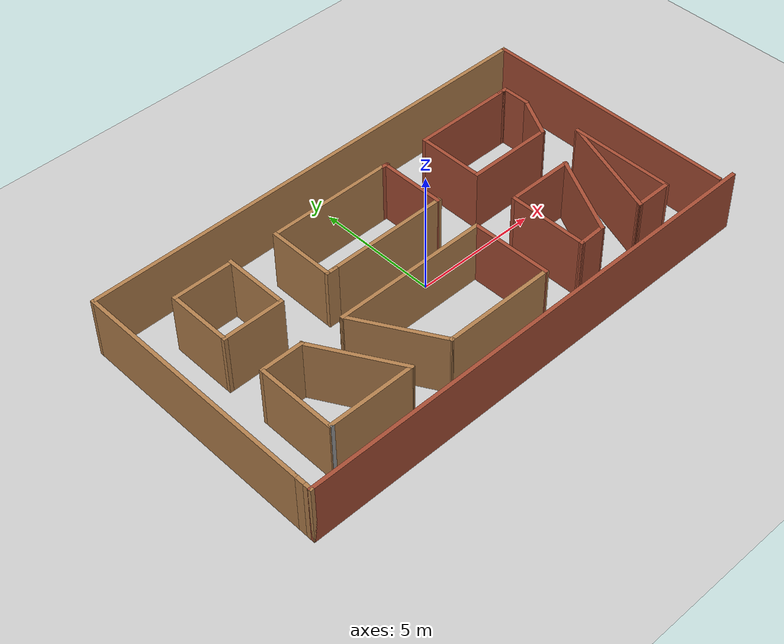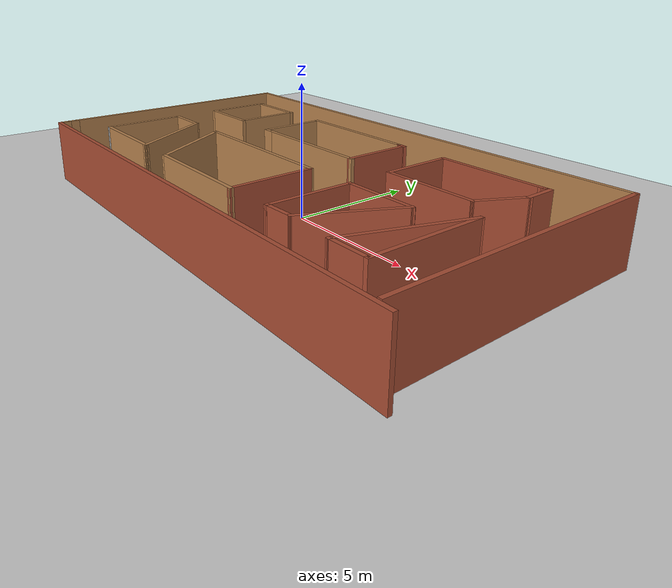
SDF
<sdf version="1.4">
  <world name="default">

    <scene>
      <ambient>0.4 0.4 0.4 1</ambient>
      <background>0.7 0.7 0.7 1</background>
      <shadows>false</shadows>
    </scene>

    <!-- A global light source -->
    <include>
      <uri>model://sun</uri>
    </include>

    <!-- A ground plane -->
    <include>
      <uri>model://ground_plane</uri>
    </include>

    <!--my own map-->
    <include>
      <uri>model://newcorridor</uri>
	<pose> 0 0 0 0 0 0</pose>
    </include>

    <physics type="ode">
      <real_time_update_rate>1000.0</real_time_update_rate>
      <max_step_size>0.001</max_step_size>
      <real_time_factor>1</real_time_factor>
      <ode>
        <solver>
          <type>quick</type>
          <iters>150</iters>
          <precon_iters>0</precon_iters>
          <sor>1.400000</sor>
          <use_dynamic_moi_rescaling>1</use_dynamic_moi_rescaling>
        </solver>
        <constraints>
          <cfm>0.00001</cfm>
          <erp>0.2</erp>
          <contact_max_correcting_vel>2000.000000</contact_max_correcting_vel>
          <contact_surface_layer>0.01000</contact_surface_layer>
        </constraints>
      </ode>
    </physics>
  </world>

</sdf>

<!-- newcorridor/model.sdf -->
<sdf version='1.6'>
  <model name='newcorridor'>
    <pose frame=''>-0.228006 0.421982 0 0 -0 0</pose>
    <link name='Wall_10'>
      <collision name='Wall_10_Collision'>
        <geometry>
          <box>
            <size>4.911 0.15 2.5</size>
          </box>
        </geometry>
        <pose frame=''>0 0 1.25 0 -0 0</pose>
      </collision>
      <visual name='Wall_10_Visual'>
        <pose frame=''>0 0 1.25 0 -0 0</pose>
        <geometry>
          <box>
            <size>4.911 0.15 2.5</size>
          </box>
        </geometry>
        <material>
          <script>
            <uri>file://media/materials/scripts/gazebo.material</uri>
            <name>Gazebo/Wood</name>
          </script>
          <ambient>1 1 1 1</ambient>
        </material>
      </visual>
      <pose frame=''>-0.828091 0.964898 0 0 -0 3.14159</pose>
    </link>
    <link name='Wall_12'>
      <collision name='Wall_12_Collision'>
        <geometry>
          <box>
            <size>0.5 0.15 2.5</size>
          </box>
        </geometry>
        <pose frame=''>0 0 1.25 0 -0 0</pose>
      </collision>
      <visual name='Wall_12_Visual'>
        <pose frame=''>0 0 1.25 0 -0 0</pose>
        <geometry>
          <box>
            <size>0.5 0.15 2.5</size>
          </box>
        </geometry>
        <material>
          <script>
            <uri>file://media/materials/scripts/gazebo.material</uri>
            <name>Gazebo/Wood</name>
          </script>
          <ambient>1 1 1 1</ambient>
        </material>
      </visual>
      <pose frame=''>-3.38359 0.964898 0 0 -0 3.14159</pose>
    </link>
    <link name='Wall_14'>
      <collision name='Wall_14_Collision'>
        <geometry>
          <box>
            <size>2.75 0.15 2.5</size>
          </box>
        </geometry>
        <pose frame=''>0 0 1.25 0 -0 0</pose>
      </collision>
      <visual name='Wall_14_Visual'>
        <pose frame=''>0 0 1.25 0 -0 0</pose>
        <geometry>
          <box>
            <size>2.75 0.15 2.5</size>
          </box>
        </geometry>
        <material>
          <script>
            <uri>file://media/materials/scripts/gazebo.material</uri>
            <name>Gazebo/Wood</name>
          </script>
          <ambient>1 1 1 1</ambient>
        </material>
      </visual>
      <pose frame=''>-3.55859 2.2649 0 0 -0 1.5708</pose>
    </link>
    <link name='Wall_15'>
      <collision name='Wall_15_Collision'>
        <geometry>
          <box>
            <size>5 0.15 2.5</size>
          </box>
        </geometry>
        <pose frame=''>0 0 1.25 0 -0 0</pose>
      </collision>
      <visual name='Wall_15_Visual'>
        <pose frame=''>0 0 1.25 0 -0 0</pose>
        <geometry>
          <box>
            <size>5 0.15 2.5</size>
          </box>
        </geometry>
        <material>
          <script>
            <uri>file://media/materials/scripts/gazebo.material</uri>
            <name>Gazebo/Wood</name>
          </script>
          <ambient>1 1 1 1</ambient>
        </material>
      </visual>
      <pose frame=''>-1.13359 3.5649 0 0 -0 0</pose>
    </link>
    <link name='Wall_16'>
      <collision name='Wall_16_Collision'>
        <geometry>
          <box>
            <size>0.40889 0.15 2.5</size>
          </box>
        </geometry>
        <pose frame=''>0 0 1.25 0 -0 0</pose>
      </collision>
      <visual name='Wall_16_Visual'>
        <pose frame=''>0 0 1.25 0 -0 0</pose>
        <geometry>
          <box>
            <size>0.40889 0.15 2.5</size>
          </box>
        </geometry>
        <material>
          <script>
            <uri>file://media/materials/scripts/gazebo.material</uri>
            <name>Gazebo/Bricks</name>
          </script>
          <ambient>1 1 1 1</ambient>
        </material>
      </visual>
      <pose frame=''>1.42021 3.55196 0 0 0 -0.10014</pose>
    </link>
    <link name='Wall_17'>
      <collision name='Wall_17_Collision'>
        <geometry>
          <box>
            <size>2.72412 0.15 2.5</size>
          </box>
        </geometry>
        <pose frame=''>0 0 1.25 0 -0 0</pose>
      </collision>
      <visual name='Wall_17_Visual'>
        <pose frame=''>0 0 1.25 0 -0 0</pose>
        <geometry>
          <box>
            <size>2.72412 0.15 2.5</size>
          </box>
        </geometry>
        <material>
          <script>
            <uri>file://media/materials/scripts/gazebo.material</uri>
            <name>Gazebo/Bricks</name>
          </script>
          <ambient>1 1 1 1</ambient>
        </material>
      </visual>
      <pose frame=''>1.50471 2.25196 0 0 0 -1.56947</pose>
    </link>
    <link name='Wall_20'>
      <collision name='Wall_20_Collision'>
        <geometry>
          <box>
            <size>2.6825 0.15 2.5</size>
          </box>
        </geometry>
        <pose frame=''>0 0 1.25 0 -0 0</pose>
      </collision>
      <visual name='Wall_20_Visual'>
        <pose frame=''>0 0 1.25 0 -0 0</pose>
        <geometry>
          <box>
            <size>2.6825 0.15 2.5</size>
          </box>
        </geometry>
        <material>
          <script>
            <uri>file://media/materials/scripts/gazebo.material</uri>
            <name>Gazebo/Wood</name>
          </script>
          <ambient>1 1 1 1</ambient>
        </material>
      </visual>
      <pose frame=''>-5.48072 2.32624 0 0 0 -1.5708</pose>
    </link>
    <link name='Wall_21'>
      <collision name='Wall_21_Collision'>
        <geometry>
          <box>
            <size>2.5 0.15 2.5</size>
          </box>
        </geometry>
        <pose frame=''>0 0 1.25 0 -0 0</pose>
      </collision>
      <visual name='Wall_21_Visual'>
        <pose frame=''>0 0 1.25 0 -0 0</pose>
        <geometry>
          <box>
            <size>2.5 0.15 2.5</size>
          </box>
        </geometry>
        <material>
          <script>
            <uri>file://media/materials/scripts/gazebo.material</uri>
            <name>Gazebo/Wood</name>
          </script>
          <ambient>1 1 1 1</ambient>
        </material>
      </visual>
      <pose frame=''>-6.65571 1.05999 0 0 -0 3.14159</pose>
    </link>
    <link name='Wall_22'>
      <collision name='Wall_22_Collision'>
        <geometry>
          <box>
            <size>2.6825 0.15 2.5</size>
          </box>
        </geometry>
        <pose frame=''>0 0 1.25 0 -0 0</pose>
      </collision>
      <visual name='Wall_22_Visual'>
        <pose frame=''>0 0 1.25 0 -0 0</pose>
        <geometry>
          <box>
            <size>2.6825 0.15 2.5</size>
          </box>
        </geometry>
        <material>
          <script>
            <uri>file://media/materials/scripts/gazebo.material</uri>
            <name>Gazebo/Wood</name>
          </script>
          <ambient>1 1 1 1</ambient>
        </material>
      </visual>
      <pose frame=''>-7.83071 2.32624 0 0 -0 1.5708</pose>
    </link>
    <link name='Wall_23'>
      <collision name='Wall_23_Collision'>
        <geometry>
          <box>
            <size>2.5 0.15 2.5</size>
          </box>
        </geometry>
        <pose frame=''>0 0 1.25 0 -0 0</pose>
      </collision>
      <visual name='Wall_23_Visual'>
        <pose frame=''>0 0 1.25 0 -0 0</pose>
        <geometry>
          <box>
            <size>2.5 0.15 2.5</size>
          </box>
        </geometry>
        <material>
          <script>
            <uri>file://media/materials/scripts/gazebo.material</uri>
            <name>Gazebo/Wood</name>
          </script>
          <ambient>1 1 1 1</ambient>
        </material>
      </visual>
      <pose frame=''>-6.65571 3.56208 0 0 -0 0</pose>
    </link>
    <link name='Wall_25'>
      <collision name='Wall_25_Collision'>
        <geometry>
          <box>
            <size>10 0.15 2.5</size>
          </box>
        </geometry>
        <pose frame=''>0 0 1.25 0 -0 0</pose>
      </collision>
      <visual name='Wall_25_Visual'>
        <pose frame=''>0 0 1.25 0 -0 0</pose>
        <geometry>
          <box>
            <size>10 0.15 2.5</size>
          </box>
        </geometry>
        <material>
          <script>
            <uri>file://media/materials/scripts/gazebo.material</uri>
            <name>Gazebo/Wood</name>
          </script>
          <ambient>1 1 1 1</ambient>
        </material>
      </visual>
      <pose frame=''>-9.8 0.35 0 0 0 -1.5708</pose>
    </link>
    <link name='Wall_27'>
      <collision name='Wall_27_Collision'>
        <geometry>
          <box>
            <size>19.25 0.15 2.5</size>
          </box>
        </geometry>
        <pose frame=''>0 0 1.25 0 -0 0</pose>
      </collision>
      <visual name='Wall_27_Visual'>
        <pose frame=''>0 0 1.25 0 -0 0</pose>
        <geometry>
          <box>
            <size>19.25 0.15 2.5</size>
          </box>
        </geometry>
        <material>
          <script>
            <uri>file://media/materials/scripts/gazebo.material</uri>
            <name>Gazebo/Wood</name>
          </script>
          <ambient>1 1 1 1</ambient>
        </material>
      </visual>
      <pose frame=''>-0.25 5.275 0 0 -0 0</pose>
    </link>
    <link name='Wall_30'>
      <collision name='Wall_30_Collision'>
        <geometry>
          <box>
            <size>1.75 0.15 2.5</size>
          </box>
        </geometry>
        <pose frame=''>0 0 1.25 0 -0 0</pose>
      </collision>
      <visual name='Wall_30_Visual'>
        <pose frame=''>0 0 1.25 0 -0 0</pose>
        <geometry>
          <box>
            <size>1.75 0.15 2.5</size>
          </box>
        </geometry>
        <material>
          <script>
            <uri>file://media/materials/scripts/gazebo.material</uri>
            <name>Gazebo/Wood</name>
          </script>
          <ambient>1 1 1 1</ambient>
        </material>
      </visual>
      <pose frame=''>-7.03071 -0.79001 0 0 -0 0</pose>
    </link>
    <link name='Wall_31'>
      <collision name='Wall_31_Collision'>
        <geometry>
          <box>
            <size>3.75 0.15 2.5</size>
          </box>
        </geometry>
        <pose frame=''>0 0 1.25 0 -0 0</pose>
      </collision>
      <visual name='Wall_31_Visual'>
        <pose frame=''>0 0 1.25 0 -0 0</pose>
        <geometry>
          <box>
            <size>3.75 0.15 2.5</size>
          </box>
        </geometry>
        <material>
          <script>
            <uri>file://media/materials/scripts/gazebo.material</uri>
            <name>Gazebo/Wood</name>
          </script>
          <ambient>1 1 1 1</ambient>
        </material>
      </visual>
      <pose frame=''>-5.33071 -2.34886 0 0 0 -1.0472</pose>
    </link>
    <link name='Wall_32'>
      <collision name='Wall_32_Collision'>
        <geometry>
          <box>
            <size>3.5 0.15 2.5</size>
          </box>
        </geometry>
        <pose frame=''>0 0 1.25 0 -0 0</pose>
      </collision>
      <visual name='Wall_32_Visual'>
        <pose frame=''>0 0 1.25 0 -0 0</pose>
        <geometry>
          <box>
            <size>3.5 0.15 2.5</size>
          </box>
        </geometry>
        <material>
          <script>
            <uri>file://media/materials/scripts/gazebo.material</uri>
            <name>Gazebo/Wood</name>
          </script>
          <ambient>1 1 1 1</ambient>
        </material>
      </visual>
      <pose frame=''>-6.10572 -3.9077 0 0 -0 3.14159</pose>
    </link>
    <link name='Wall_33'>
      <collision name='Wall_33_Collision'>
        <geometry>
          <box>
            <size>0.15 0.15 2.5</size>
          </box>
        </geometry>
        <pose frame=''>0 0 1.25 0 -0 0</pose>
      </collision>
      <visual name='Wall_33_Visual'>
        <pose frame=''>0 0 1.25 0 -0 0</pose>
        <geometry>
          <box>
            <size>0.15 0.15 2.5</size>
          </box>
        </geometry>
        <material>
          <script>
            <uri>file://media/materials/scripts/gazebo.material</uri>
            <name>Gazebo/Grey</name>
          </script>
          <ambient>1 1 1 1</ambient>
        </material>
      </visual>
      <pose frame=''>-7.78071 -3.9077 0 0 -0 0</pose>
    </link>
    <link name='Wall_34'>
      <collision name='Wall_34_Collision'>
        <geometry>
          <box>
            <size>0.15 0.15 2.5</size>
          </box>
        </geometry>
        <pose frame=''>0 0 1.25 0 -0 0</pose>
      </collision>
      <visual name='Wall_34_Visual'>
        <pose frame=''>0 0 1.25 0 -0 0</pose>
        <geometry>
          <box>
            <size>0.15 0.15 2.5</size>
          </box>
        </geometry>
        <material>
          <script>
            <uri>file://media/materials/scripts/gazebo.material</uri>
            <name>Gazebo/Grey</name>
          </script>
          <ambient>1 1 1 1</ambient>
        </material>
      </visual>
      <pose frame=''>-7.78071 -3.9077 0 0 -0 0</pose>
    </link>
    <link name='Wall_38'>
      <collision name='Wall_38_Collision'>
        <geometry>
          <box>
            <size>3.25 0.15 2.5</size>
          </box>
        </geometry>
        <pose frame=''>0 0 1.25 0 -0 0</pose>
      </collision>
      <visual name='Wall_38_Visual'>
        <pose frame=''>0 0 1.25 0 -0 0</pose>
        <geometry>
          <box>
            <size>3.25 0.15 2.5</size>
          </box>
        </geometry>
        <material>
          <script>
            <uri>file://media/materials/scripts/gazebo.material</uri>
            <name>Gazebo/Wood</name>
          </script>
          <ambient>1 1 1 1</ambient>
        </material>
      </visual>
      <pose frame=''>-7.83071 -2.34001 0 0 0 -1.5708</pose>
    </link>
    <link name='Wall_40'>
      <collision name='Wall_40_Collision'>
        <geometry>
          <box>
            <size>3.75 0.15 2.5</size>
          </box>
        </geometry>
        <pose frame=''>0 0 1.25 0 -0 0</pose>
      </collision>
      <visual name='Wall_40_Visual'>
        <pose frame=''>0 0 1.25 0 -0 0</pose>
        <geometry>
          <box>
            <size>3.75 0.15 2.5</size>
          </box>
        </geometry>
        <material>
          <script>
            <uri>file://media/materials/scripts/gazebo.material</uri>
            <name>Gazebo/Wood</name>
          </script>
          <ambient>1 1 1 1</ambient>
        </material>
      </visual>
      <pose frame=''>-3.63176 -2.40626 0 0 0 -1.0472</pose>
    </link>
    <link name='Wall_42'>
      <collision name='Wall_42_Collision'>
        <geometry>
          <box>
            <size>6.25 0.15 2.5</size>
          </box>
        </geometry>
        <pose frame=''>0 0 1.25 0 -0 0</pose>
      </collision>
      <visual name='Wall_42_Visual'>
        <pose frame=''>0 0 1.25 0 -0 0</pose>
        <geometry>
          <box>
            <size>6.25 0.15 2.5</size>
          </box>
        </geometry>
        <material>
          <script>
            <uri>file://media/materials/scripts/gazebo.material</uri>
            <name>Gazebo/Wood</name>
          </script>
          <ambient>1 1 1 1</ambient>
        </material>
      </visual>
      <pose frame=''>-1.48176 -0.847414 0 0 -0 0</pose>
    </link>
    <link name='Wall_44'>
      <collision name='Wall_44_Collision'>
        <geometry>
          <box>
            <size>0.5 0.15 2.5</size>
          </box>
        </geometry>
        <pose frame=''>0 0 1.25 0 -0 0</pose>
      </collision>
      <visual name='Wall_44_Visual'>
        <pose frame=''>0 0 1.25 0 -0 0</pose>
        <geometry>
          <box>
            <size>0.5 0.15 2.5</size>
          </box>
        </geometry>
        <material>
          <script>
            <uri>file://media/materials/scripts/gazebo.material</uri>
            <name>Gazebo/Wood</name>
          </script>
          <ambient>1 1 1 1</ambient>
        </material>
      </visual>
      <pose frame=''>-9.8 -4.75 0 0 0 -1.5708</pose>
    </link>
    <link name='Wall_45'>
      <collision name='Wall_45_Collision'>
        <geometry>
          <box>
            <size>0.5 0.15 2.5</size>
          </box>
        </geometry>
        <pose frame=''>0 0 1.25 0 -0 0</pose>
      </collision>
      <visual name='Wall_45_Visual'>
        <pose frame=''>0 0 1.25 0 -0 0</pose>
        <geometry>
          <box>
            <size>0.5 0.15 2.5</size>
          </box>
        </geometry>
        <material>
          <script>
            <uri>file://media/materials/scripts/gazebo.material</uri>
            <name>Gazebo/Wood</name>
          </script>
          <ambient>1 1 1 1</ambient>
        </material>
      </visual>
      <pose frame=''>-9.8 -5.1 0 0 0 -1.5708</pose>
    </link>
    <link name='Wall_46'>
      <collision name='Wall_46_Collision'>
        <geometry>
          <box>
            <size>19.75 0.15 2.5</size>
          </box>
        </geometry>
        <pose frame=''>0 0 1.25 0 -0 0</pose>
      </collision>
      <visual name='Wall_46_Visual'>
        <pose frame=''>0 0 1.25 0 -0 0</pose>
        <geometry>
          <box>
            <size>19.75 0.15 2.5</size>
          </box>
        </geometry>
        <material>
          <script>
            <uri>file://media/materials/scripts/gazebo.material</uri>
            <name>Gazebo/Bricks</name>
          </script>
          <ambient>1 1 1 1</ambient>
        </material>
      </visual>
      <pose frame=''>0 -5.275 0 0 -0 0</pose>
    </link>
    <link name='Wall_48'>
      <collision name='Wall_48_Collision'>
        <geometry>
          <box>
            <size>4.5 0.15 2.5</size>
          </box>
        </geometry>
        <pose frame=''>0 0 1.25 0 -0 0</pose>
      </collision>
      <visual name='Wall_48_Visual'>
        <pose frame=''>0 0 1.25 0 -0 0</pose>
        <geometry>
          <box>
            <size>4.5 0.15 2.5</size>
          </box>
        </geometry>
        <material>
          <script>
            <uri>file://media/materials/scripts/gazebo.material</uri>
            <name>Gazebo/Wood</name>
          </script>
          <ambient>1 1 1 1</ambient>
        </material>
      </visual>
      <pose frame=''>-0.55676 -3.9651 0 0 -0 0</pose>
    </link>
    <link name='Wall_49'>
      <collision name='Wall_49_Collision'>
        <geometry>
          <box>
            <size>3.26809 0.15 2.5</size>
          </box>
        </geometry>
        <pose frame=''>0 0 1.25 0 -0 0</pose>
      </collision>
      <visual name='Wall_49_Visual'>
        <pose frame=''>0 0 1.25 0 -0 0</pose>
        <geometry>
          <box>
            <size>3.26809 0.15 2.5</size>
          </box>
        </geometry>
        <material>
          <script>
            <uri>file://media/materials/scripts/gazebo.material</uri>
            <name>Gazebo/Bricks</name>
          </script>
          <ambient>1 1 1 1</ambient>
        </material>
      </visual>
      <pose frame=''>1.59324 -2.40626 0 0 -0 1.58683</pose>
    </link>
    <link name='Wall_52'>
      <collision name='Wall_52_Collision'>
        <geometry>
          <box>
            <size>2.75 0.15 2.5</size>
          </box>
        </geometry>
        <pose frame=''>0 0 1.25 0 -0 0</pose>
      </collision>
      <visual name='Wall_52_Visual'>
        <pose frame=''>0 0 1.25 0 -0 0</pose>
        <geometry>
          <box>
            <size>2.75 0.15 2.5</size>
          </box>
        </geometry>
        <material>
          <script>
            <uri>file://media/materials/scripts/gazebo.material</uri>
            <name>Gazebo/Bricks</name>
          </script>
          <ambient>1 1 1 1</ambient>
        </material>
      </visual>
      <pose frame=''>3.42624 2.24559 0 0 0 -1.5708</pose>
    </link>
    <link name='Wall_58'>
      <collision name='Wall_58_Collision'>
        <geometry>
          <box>
            <size>10.5 0.15 2.5</size>
          </box>
        </geometry>
        <pose frame=''>0 0 1.25 0 -0 0</pose>
      </collision>
      <visual name='Wall_58_Visual'>
        <pose frame=''>0 0 1.25 0 -0 0</pose>
        <geometry>
          <box>
            <size>10.5 0.15 2.5</size>
          </box>
        </geometry>
        <material>
          <script>
            <uri>file://media/materials/scripts/gazebo.material</uri>
            <name>Gazebo/Bricks</name>
          </script>
          <ambient>1 1 1 1</ambient>
        </material>
      </visual>
      <pose frame=''>9.3 0.1 0 0 0 -1.5708</pose>
    </link>
    <link name='Wall_60'>
      <collision name='Wall_60_Collision'>
        <geometry>
          <box>
            <size>3.25 0.15 2.5</size>
          </box>
        </geometry>
        <pose frame=''>0 0 1.25 0 -0 0</pose>
      </collision>
      <visual name='Wall_60_Visual'>
        <pose frame=''>0 0 1.25 0 -0 0</pose>
        <geometry>
          <box>
            <size>3.25 0.15 2.5</size>
          </box>
        </geometry>
        <material>
          <script>
            <uri>file://media/materials/scripts/gazebo.material</uri>
            <name>Gazebo/Bricks</name>
          </script>
          <ambient>1 1 1 1</ambient>
        </material>
      </visual>
      <pose frame=''>3.47224 -2.35141 0 0 0 -1.5708</pose>
    </link>
    <link name='Wall_64'>
      <collision name='Wall_64_Collision'>
        <geometry>
          <box>
            <size>1.20015 0.15 2.5</size>
          </box>
        </geometry>
        <pose frame=''>0 0 1.25 0 -0 0</pose>
      </collision>
      <visual name='Wall_64_Visual'>
        <pose frame=''>0 0 1.25 0 -0 0</pose>
        <geometry>
          <box>
            <size>1.20015 0.15 2.5</size>
          </box>
        </geometry>
        <material>
          <script>
            <uri>file://media/materials/scripts/gazebo.material</uri>
            <name>Gazebo/Bricks</name>
          </script>
          <ambient>1 1 1 1</ambient>
        </material>
      </visual>
      <pose frame=''>3.99724 -3.88381 0 0 0 -3.10807</pose>
    </link>
    <link name='Wall_72'>
      <collision name='Wall_72_Collision'>
        <geometry>
          <box>
            <size>4 0.15 2.5</size>
          </box>
        </geometry>
        <pose frame=''>0 0 1.25 0 -0 0</pose>
      </collision>
      <visual name='Wall_72_Visual'>
        <pose frame=''>0 0 1.25 0 -0 0</pose>
        <geometry>
          <box>
            <size>4 0.15 2.5</size>
          </box>
        </geometry>
        <material>
          <script>
            <uri>file://media/materials/scripts/gazebo.material</uri>
            <name>Gazebo/Bricks</name>
          </script>
          <ambient>1 1 1 1</ambient>
        </material>
      </visual>
      <pose frame=''>5.35124 3.54559 0 0 -0 0</pose>
    </link>
    <link name='Wall_73'>
      <collision name='Wall_73_Collision'>
        <geometry>
          <box>
            <size>0.25 0.15 2.5</size>
          </box>
        </geometry>
        <pose frame=''>0 0 1.25 0 -0 0</pose>
      </collision>
      <visual name='Wall_73_Visual'>
        <pose frame=''>0 0 1.25 0 -0 0</pose>
        <geometry>
          <box>
            <size>0.25 0.15 2.5</size>
          </box>
        </geometry>
        <material>
          <script>
            <uri>file://media/materials/scripts/gazebo.material</uri>
            <name>Gazebo/Bricks</name>
          </script>
          <ambient>1 1 1 1</ambient>
        </material>
      </visual>
      <pose frame=''>7.32624 3.54559 0 0 -0 0</pose>
    </link>
    <link name='Wall_74'>
      <collision name='Wall_74_Collision'>
        <geometry>
          <box>
            <size>0.25 0.15 2.5</size>
          </box>
        </geometry>
        <pose frame=''>0 0 1.25 0 -0 0</pose>
      </collision>
      <visual name='Wall_74_Visual'>
        <pose frame=''>0 0 1.25 0 -0 0</pose>
        <geometry>
          <box>
            <size>0.25 0.15 2.5</size>
          </box>
        </geometry>
        <material>
          <script>
            <uri>file://media/materials/scripts/gazebo.material</uri>
            <name>Gazebo/Bricks</name>
          </script>
          <ambient>1 1 1 1</ambient>
        </material>
      </visual>
      <pose frame=''>7.42624 3.54559 0 0 -0 0</pose>
    </link>
    <link name='Wall_75'>
      <collision name='Wall_75_Collision'>
        <geometry>
          <box>
            <size>0.25 0.15 2.5</size>
          </box>
        </geometry>
        <pose frame=''>0 0 1.25 0 -0 0</pose>
      </collision>
      <visual name='Wall_75_Visual'>
        <pose frame=''>0 0 1.25 0 -0 0</pose>
        <geometry>
          <box>
            <size>0.25 0.15 2.5</size>
          </box>
        </geometry>
        <material>
          <script>
            <uri>file://media/materials/scripts/gazebo.material</uri>
            <name>Gazebo/Bricks</name>
          </script>
          <ambient>1 1 1 1</ambient>
        </material>
      </visual>
      <pose frame=''>7.52624 3.54559 0 0 -0 0</pose>
    </link>
    <link name='Wall_76'>
      <collision name='Wall_76_Collision'>
        <geometry>
          <box>
            <size>1.1971 0.15 2.5</size>
          </box>
        </geometry>
        <pose frame=''>0 0 1.25 0 -0 0</pose>
      </collision>
      <visual name='Wall_76_Visual'>
        <pose frame=''>0 0 1.25 0 -0 0</pose>
        <geometry>
          <box>
            <size>1.1971 0.15 2.5</size>
          </box>
        </geometry>
        <material>
          <script>
            <uri>file://media/materials/scripts/gazebo.material</uri>
            <name>Gazebo/Bricks</name>
          </script>
          <ambient>1 1 1 1</ambient>
        </material>
      </visual>
      <pose frame=''>7.57624 3.02204 0 0 0 -1.5708</pose>
    </link>
    <link name='Wall_79'>
      <collision name='Wall_79_Collision'>
        <geometry>
          <box>
            <size>2.75 0.15 2.5</size>
          </box>
        </geometry>
        <pose frame=''>0 0 1.25 0 -0 0</pose>
      </collision>
      <visual name='Wall_79_Visual'>
        <pose frame=''>0 0 1.25 0 -0 0</pose>
        <geometry>
          <box>
            <size>2.75 0.15 2.5</size>
          </box>
        </geometry>
        <material>
          <script>
            <uri>file://media/materials/scripts/gazebo.material</uri>
            <name>Gazebo/Bricks</name>
          </script>
          <ambient>1 1 1 1</ambient>
        </material>
      </visual>
      <pose frame=''>4.77224 -0.801414 0 0 -0 0</pose>
    </link>
    <link name='Wall_81'>
      <collision name='Wall_81_Collision'>
        <geometry>
          <box>
            <size>3.5 0.15 2.5</size>
          </box>
        </geometry>
        <pose frame=''>0 0 1.25 0 -0 0</pose>
      </collision>
      <visual name='Wall_81_Visual'>
        <pose frame=''>0 0 1.25 0 -0 0</pose>
        <geometry>
          <box>
            <size>3.5 0.15 2.5</size>
          </box>
        </geometry>
        <material>
          <script>
            <uri>file://media/materials/scripts/gazebo.material</uri>
            <name>Gazebo/Bricks</name>
          </script>
          <ambient>1 1 1 1</ambient>
        </material>
      </visual>
      <pose frame=''>5.10124 0.945586 0 0 -0 0</pose>
    </link>
    <link name='Wall_83'>
      <collision name='Wall_83_Collision'>
        <geometry>
          <box>
            <size>3.58445 0.15 2.5</size>
          </box>
        </geometry>
        <pose frame=''>0 0 1.25 0 -0 0</pose>
      </collision>
      <visual name='Wall_83_Visual'>
        <pose frame=''>0 0 1.25 0 -0 0</pose>
        <geometry>
          <box>
            <size>3.58445 0.15 2.5</size>
          </box>
        </geometry>
        <material>
          <script>
            <uri>file://media/materials/scripts/gazebo.material</uri>
            <name>Gazebo/Bricks</name>
          </script>
          <ambient>1 1 1 1</ambient>
        </material>
      </visual>
      <pose frame=''>5.29724 -2.33381 0 0 0 -2.03903</pose>
    </link>
    <link name='Wall_85'>
      <collision name='Wall_85_Collision'>
        <geometry>
          <box>
            <size>1.89685 0.15 2.5</size>
          </box>
        </geometry>
        <pose frame=''>0 0 1.25 0 -0 0</pose>
      </collision>
      <visual name='Wall_85_Visual'>
        <pose frame=''>0 0 1.25 0 -0 0</pose>
        <geometry>
          <box>
            <size>1.89685 0.15 2.5</size>
          </box>
        </geometry>
        <material>
          <script>
            <uri>file://media/materials/scripts/gazebo.material</uri>
            <name>Gazebo/Bricks</name>
          </script>
          <ambient>1 1 1 1</ambient>
        </material>
      </visual>
      <pose frame=''>7.17624 1.72204 0 0 0 -2.0465</pose>
    </link>
    <link name='Wall_87'>
      <collision name='Wall_87_Collision'>
        <geometry>
          <box>
            <size>1.5 0.15 2.5</size>
          </box>
        </geometry>
        <pose frame=''>0 0 1.25 0 -0 0</pose>
      </collision>
      <visual name='Wall_87_Visual'>
        <pose frame=''>0 0 1.25 0 -0 0</pose>
        <geometry>
          <box>
            <size>1.5 0.15 2.5</size>
          </box>
        </geometry>
        <material>
          <script>
            <uri>file://media/materials/scripts/gazebo.material</uri>
            <name>Gazebo/Bricks</name>
          </script>
          <ambient>1 1 1 1</ambient>
        </material>
      </visual>
      <pose frame=''>7.00106 -4.004 0 0 -0 0</pose>
    </link>
    <link name='Wall_89'>
      <collision name='Wall_89_Collision'>
        <geometry>
          <box>
            <size>4.25 0.15 2.5</size>
          </box>
        </geometry>
        <pose frame=''>0 0 1.25 0 -0 0</pose>
      </collision>
      <visual name='Wall_89_Visual'>
        <pose frame=''>0 0 1.25 0 -0 0</pose>
        <geometry>
          <box>
            <size>4.25 0.15 2.5</size>
          </box>
        </geometry>
        <material>
          <script>
            <uri>file://media/materials/scripts/gazebo.material</uri>
            <name>Gazebo/Bricks</name>
          </script>
          <ambient>1 1 1 1</ambient>
        </material>
      </visual>
      <pose frame=''>7.72791 -1.95425 0 0 0 -1.5708</pose>
    </link>
    <link name='Wall_91'>
      <collision name='Wall_91_Collision'>
        <geometry>
          <box>
            <size>4.4828 0.15 2.5</size>
          </box>
        </geometry>
        <pose frame=''>0 0 1.25 0 -0 0</pose>
      </collision>
      <visual name='Wall_91_Visual'>
        <pose frame=''>0 0 1.25 0 -0 0</pose>
        <geometry>
          <box>
            <size>4.4828 0.15 2.5</size>
          </box>
        </geometry>
        <material>
          <script>
            <uri>file://media/materials/scripts/gazebo.material</uri>
            <name>Gazebo/Bricks</name>
          </script>
          <ambient>1 1 1 1</ambient>
        </material>
      </visual>
      <pose frame=''>7.02698 -1.95412 0 0 0 -1.90027</pose>
    </link>
    <static>1</static>
  </model>
</sdf>
